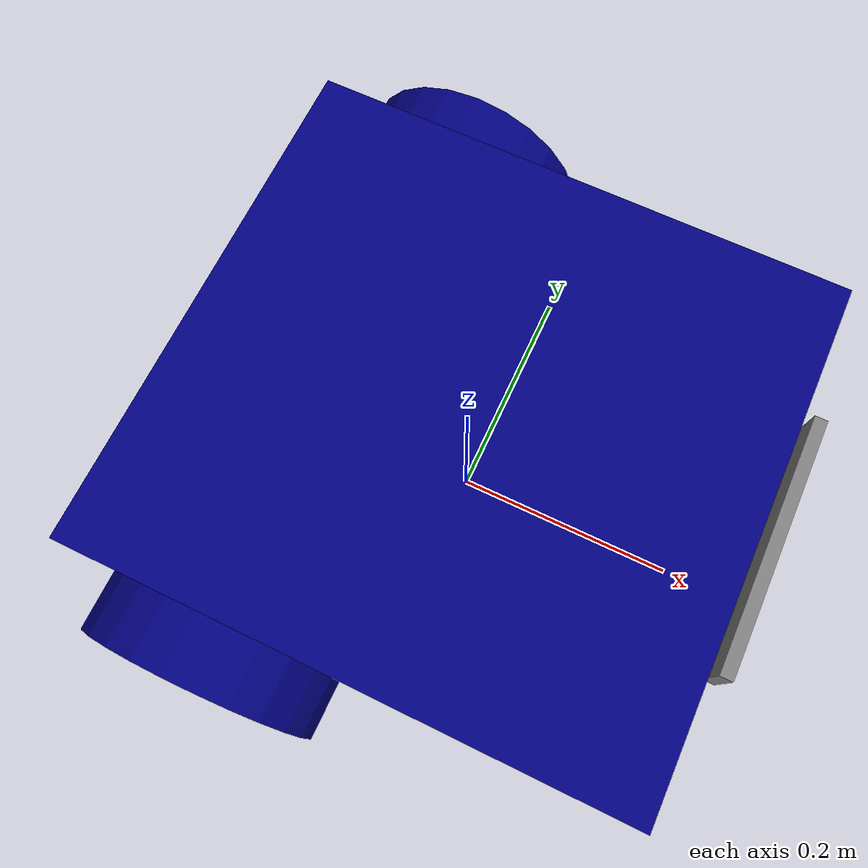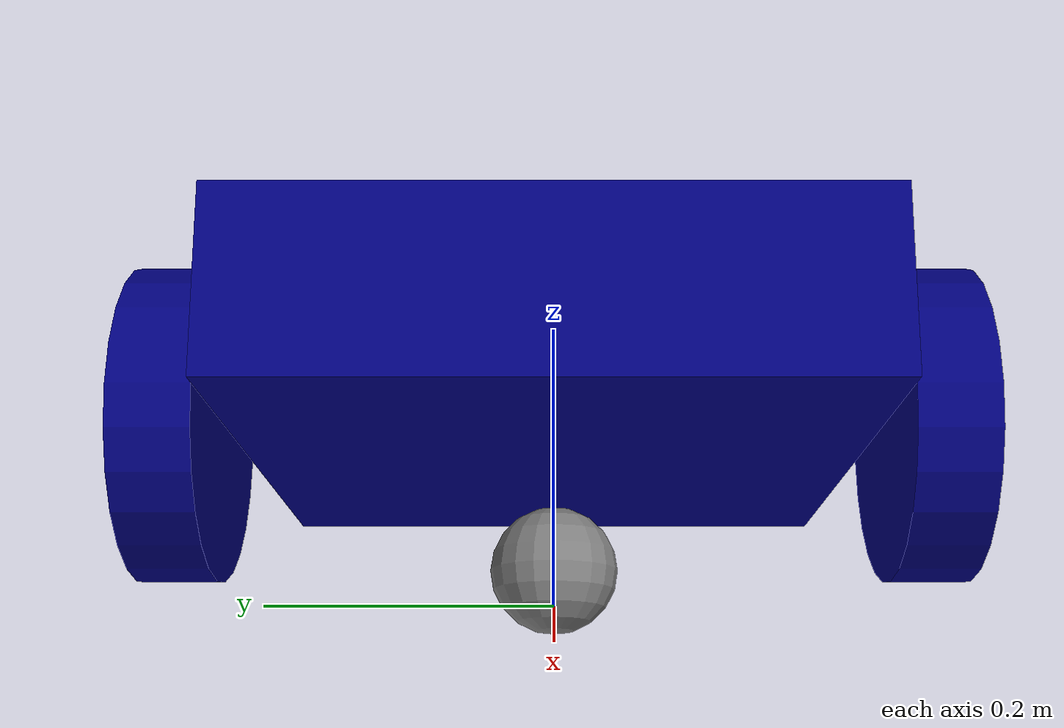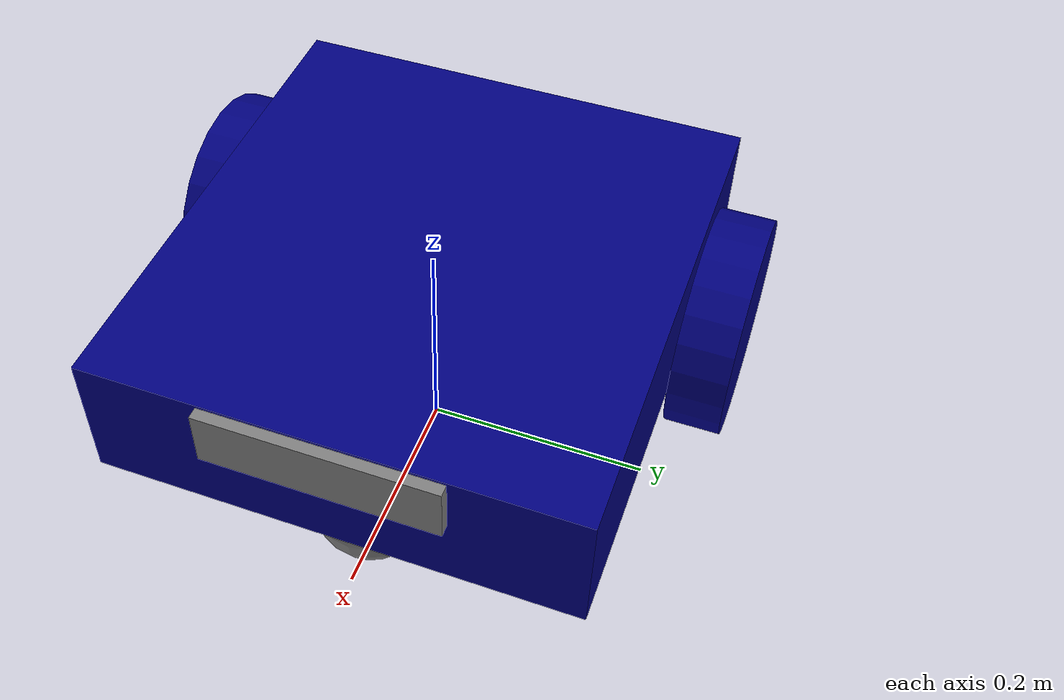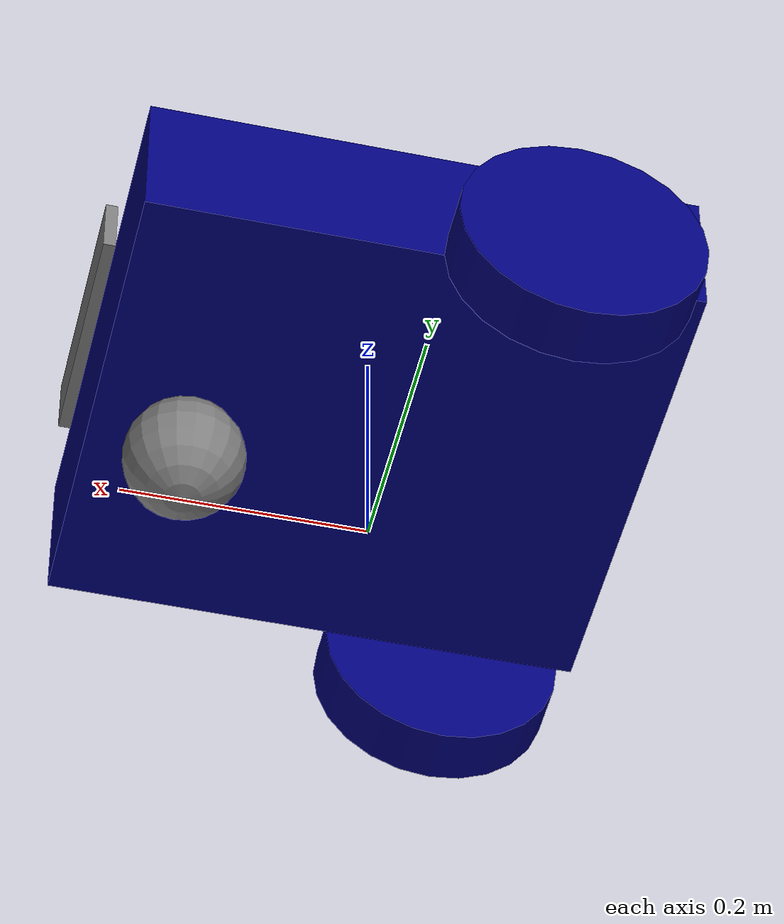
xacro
<?xml version="1.0"?>
<robot name="line_follower" xmlns:xacro="http://www.ros.org/wiki/xacro">
  <!-- Define the robot's links and joints here -->

  <xacro:include filename="properties.xacro" />
  <xacro:include filename="base.xacro" />
  <xacro:include filename="camera_sensor.xacro" />
  <xacro:include filename="base_gazebo.xacro" />

</robot>

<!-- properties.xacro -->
<robot xmlns:xacro="http://www.ros.org/wiki/xacro">

    <xacro:property name="base_length" value="0.45" />
    <xacro:property name="base_width" value="0.42" />
    <xacro:property name="base_height" value="0.12" />
    <xacro:property name="wheel_radius" value="0.1" />
    <xacro:property name="wheel_length" value="0.05" />
    <xacro:property name="camera_length" value="0.01" />
    <xacro:property name="camera_width" value="0.2" />
    <xacro:property name="camera_height" value="0.05" />
    <xacro:property name="camera_offset_x" value="0.235" />
    <xacro:property name="camera_offset_y" value="0" />
    <xacro:property name="camera_offset_z" value="0.1" />

    <material name="black">
        <color rgba="0 0 0 1" />
    </material>

    <material name="blue">
        <color rgba="0 0 0.5 1" />
    </material>

    <material name="grey">
        <color rgba="0.5 0.5 0.5 1" />
    </material>

    <material name="orange">
        <color rgba="1 0.5 0 1" />
    </material>

    <material name="yellow">
        <color rgba="1 1 0 1" />
    </material>

    <xacro:macro name="box_inertia" params="m x y z o_xyz o_rpy">
        <inertial>
            <mass value="${m}" />
            <origin xyz="${o_xyz}" rpy="${o_rpy}" />
            <inertia ixx="${(m/12) * (y*y + z*z)}" ixy="0" ixz="0"
                     iyy="${(m/12) * (x*x + z*z)}" iyz="0"
                     izz="${(m/12) * (x*x + y*y)}" />
        </inertial>
    </xacro:macro>

    <xacro:macro name="cylinder_inertia" params="m r l o_xyz o_rpy">
        <inertial>
            <mass value="${m}" />
            <origin xyz="${o_xyz}" rpy="${o_rpy}" />
            <inertia ixx="${(m/12) * (3*r*r + l*l)}" ixy="0" ixz="0"
                     iyy="${(m/12) * (3*r*r + l*l)}" iyz="0"
                     izz="${(m/2) * (r*r)}" />
        </inertial>
    </xacro:macro>

    <xacro:macro name="sphere_inertia" params="m r o_xyz o_rpy">
        <inertial>
            <mass value="${m}" />
            <origin xyz="${o_xyz}" rpy="${o_rpy}" />
            <inertia ixx="${(2/5) * m * r * r}" ixy="0" ixz="0"
                     iyy="${(2/5) * m * r * r}" iyz="0"
                     izz="${(2/5) * m * r * r}" />
        </inertial>
    </xacro:macro>

</robot>

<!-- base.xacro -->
<robot xmlns:xacro="http://www.ros.org/wiki/xacro">

    <link name="base_footprint" />

    <link name="base_link">
        <visual>
            <geometry>
                <box size="${base_length} ${base_width} ${base_height}" />
            </geometry>
            <origin xyz="0 0 ${base_height / 2.0}" rpy="0 0 0" />
            <material name="blue" />
        </visual>
        <collision>
            <geometry>
                <box size="${base_length} ${base_width} ${base_height}" />
            </geometry>
            <origin xyz="0 0 ${base_height / 2.0}" rpy="0 0 0" />
        </collision>
        <xacro:box_inertia m="5.0" x="${base_length}" y="${base_width}" z="${base_height}"
                           o_xyz="0 0 ${base_height / 2.0}" o_rpy="0 0 0" />
    </link>

    <xacro:macro name="wheel_link" params="prefix">
        <link name="${prefix}_wheel_link">
            <visual>
                <geometry>
                    <cylinder radius="${wheel_radius}" length="${wheel_length}" />
                </geometry>
                <origin xyz="0 0 0" rpy="${pi / 2.0} 0 0" />
                <material name="blue" />
            </visual>
            <collision>
                <geometry>
                    <sphere radius="${wheel_radius}" />
                </geometry>
                <origin xyz="0 0 0" rpy="0 0 0" />
            </collision>
            <xacro:cylinder_inertia m="1.0" r="${wheel_radius}" l="${wheel_length}"
                                    o_xyz="0 0 0" o_rpy="${pi / 2.0} 0 0" />
        </link>
    </xacro:macro>

    <xacro:wheel_link prefix="right" />
    <xacro:wheel_link prefix="left" />

    <link name="caster_wheel_link">
        <visual>
            <geometry>
                <sphere radius="${wheel_radius / 2.0}" />
            </geometry>
            <origin xyz="0 0 0" rpy="0 0 0" />
            <material name="grey" />
        </visual>
        <collision>
            <geometry>
                <sphere radius="${wheel_radius / 2.0}" />
            </geometry>
            <origin xyz="0 0 0" rpy="0 0 0" />
        </collision>
        <xacro:sphere_inertia m="0.5" r="${wheel_radius / 2.0}"
                              o_xyz="0 0 0" o_rpy="0 0 0" />
    </link>

    <joint name="base_joint" type="fixed">
        <parent link="base_footprint" />
        <child link="base_link" />
        <origin xyz="0 0 ${wheel_radius}" rpy="0 0 0"/>
    </joint>

    <joint name="base_right_wheel_joint" type="continuous">
        <parent link="base_link" />
        <child link="right_wheel_link" />
        <origin xyz="${-base_length / 4.0} ${-(base_width + wheel_length) / 2.0} 0" rpy="0 0 0" />
        <axis xyz="0 1 0" />
    </joint>

    <joint name="base_left_wheel_joint" type="continuous">
        <parent link="base_link" />
        <child link="left_wheel_link" />
        <origin xyz="${-base_length / 4.0} ${(base_width + wheel_length) / 2.0} 0" rpy="0 0 0" />
        <axis xyz="0 1 0" />
    </joint>

    <joint name="base_caster_wheel_joint" type="fixed">
        <parent link="base_link" />
        <child link="caster_wheel_link" />
        <origin xyz="${base_length / 3.0} 0 ${-wheel_radius / 2.0}" rpy="0 0 0" />
    </joint>

</robot>

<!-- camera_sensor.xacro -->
<robot xmlns:xacro="http://www.ros.org/wiki/xacro">
    <link name="camera_link">
        <visual>
            <geometry>
                <box size="${camera_length} ${camera_width} ${camera_height}" />
            </geometry>
            <origin xyz="0 0 0" rpy="0 0 0" />
            <material name="grey" />
        </visual>
        <collision>
            <geometry>
                <box size="${camera_length} ${camera_width} ${camera_height}" />
            </geometry>
            <origin xyz="0 0 0" rpy="0 0 0" />
        </collision>
    </link>

    <joint name="camera_joint" type="fixed">
        <parent link="base_link" />
        <child link="camera_link" />
        <origin xyz="${camera_offset_x} ${camera_offset_y} ${camera_offset_z}" rpy="0 0 0" />
    </joint>

    <gazebo reference="camera_link">
        <sensor name="camera_sensor" type="camera">
            <camera>
                <horizontal_fov>1.396234</horizontal_fov>
                <image>
                    <width>640</width>
                    <height>480</height>
                    <format>R8G8B8</format>
                </image>
                <clip>
                    <near>0.1</near>
                    <far>100</far>
                </clip>
                <noise>
                    <type>gaussian</type>
                    <mean>0.0</mean>
                    <stddev>0.007</stddev>
                </noise>
                <optical_frame_id>camera_link</optical_frame_id>
                <camera_info_topic>camera/camera_info</camera_info_topic>
            </camera>
            <always_on>1</always_on>
            <update_rate>20</update_rate>
            <visualize>true</visualize>
            <topic>camera/image_raw</topic>
        </sensor>
    </gazebo>
</robot>
